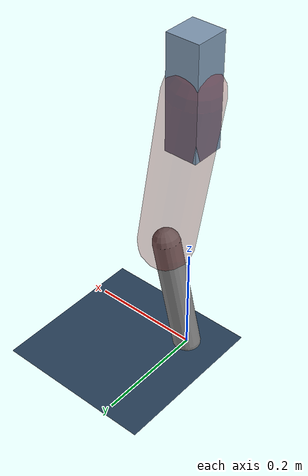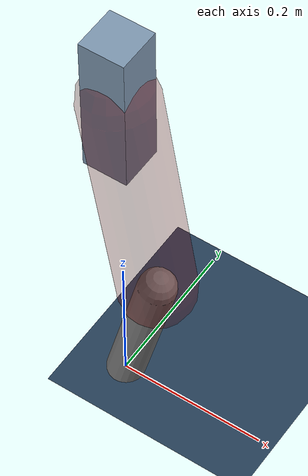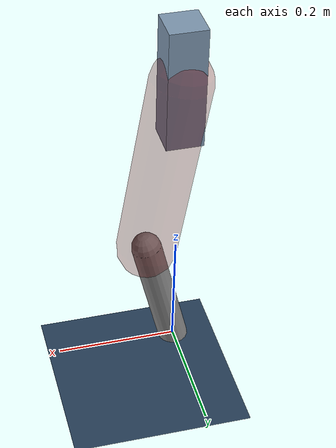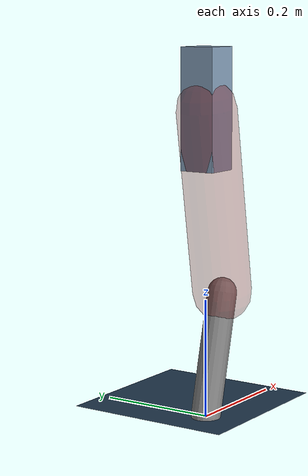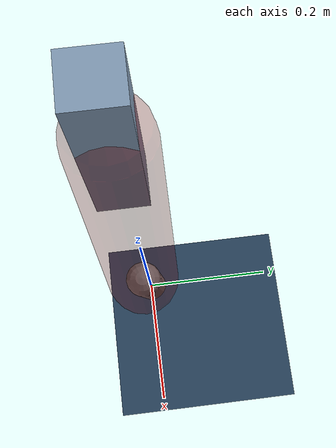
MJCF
<mujoco model="Hopper2D">
	<compiler inertiafromgeom="true" angle="radian" />
	<option timestep="0.001" integrator="implicit" cone="elliptic" solver="Newton" tolerance="1e-10" />

	<default>
		<geom contype="1" conaffinity="1" condim="3" friction="2 0.005 0.0001" solref="0.005 1" />
		<joint limited="true" damping="0.1" />
	</default>

	<asset>
		<texture name="skybox" type="skybox" builtin="gradient" rgb1=".4 .6 .8" rgb2="0 0 0" width="800" height="800" />
		<texture name="grid" type="2d" builtin="checker" rgb1=".1 .2 .3" rgb2=".2 .3 .4" width="300" height="300" mark="edge" markrgb=".2 .3 .4" />
		<material name="ground" texture="grid" texrepeat="1 1" texuniform="true" reflectance="0.1" />
		<material name="leg" rgba="0.5 0.6 0.7 1" />
	</asset>

	<worldbody>

		<geom name="floor" type="plane" size="5 5 0.25" material="ground" />

		<light directional="false" diffuse="0.8 0.8 0.8" specular="0.3 0.3 0.3" pos="0 0 2" dir="0 0 -1" />
		<light mode="targetbodycom" target="base" directional="false" diffuse="0.8 0.8 0.8" specular="0.3 0.3 0.3" pos="0 0 2" dir="0 0 -1" />

		<camera name="fixed" pos="0 -2 1" xyaxes="1 0 0 0 0 1" />
		<camera name="tracking" mode="trackcom" pos="0 -3 1" />

		<body name="root" pos="0 0 0.5168910599908729">
			<joint name="slide_x" type="slide" axis="1 0 0" range="-100 100" />
			<joint name="slide_z" type="slide" axis="0 0 1" range="0 10" />

			<body name="base" pos="0 0 0">
				<geom name="torso" type="box" size="0.03 0.03 0.1" mass="1.998" material="leg" />

				<body name="link1" pos="0 0 0" euler="0 1.4113372656316943 0">
					<joint type="hinge" axis="0 -1 0" pos="0 0 0" name="hinge1" limited="true" range="-3.14 3.14" stiffness="0" damping="0.1" />
					<geom name="thigh" type="capsule" fromto="0 0 0 0.31519669123679483 0 0" size="0.05" rgba="0.5 0 0 0.3" mass="1.0300507354630255" />

					<body name="link2" pos="0.31519669123679483 0 0" euler="0 0.3981361614063121 0">
						<joint type="hinge" axis="0 -1 0" pos="0 0 0" name="hinge2" limited="true" range="-3.14 3.14" stiffness="0" damping="0.1" />
						<geom name="shank" type="capsule" fromto="0 0 0 0.2116943687540781 0 0" size="0.025" mass="0.41072493187867026" />

					</body>
				</body>
			</body>
		</body>
	</worldbody>

	<actuator>
		<motor name="torque1" joint="hinge1" ctrlrange="-71.50169785735515 71.50169785735515" ctrllimited="true" gear="1" />
		<motor name="torque2" joint="hinge2" ctrlrange="-52.88646057371486 52.88646057371486" ctrllimited="true" gear="1" />
	</actuator>
</mujoco>
